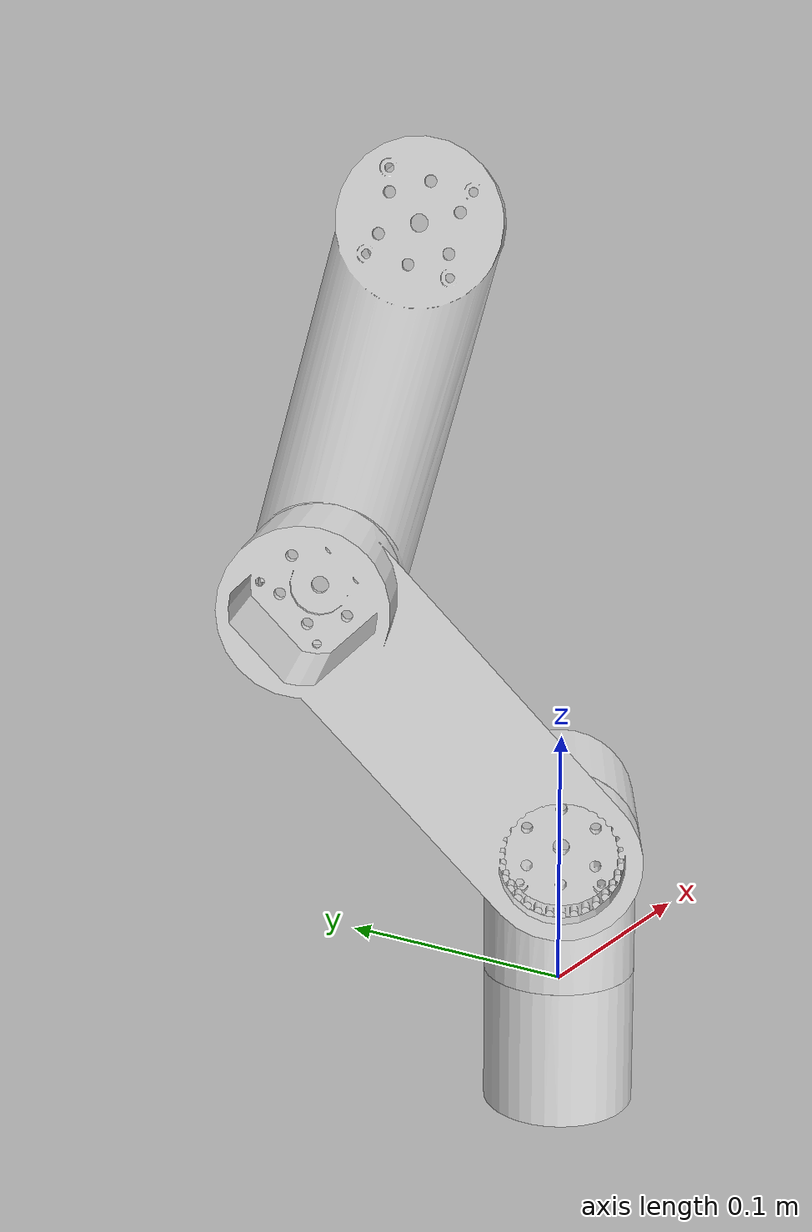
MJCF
<mujoco model="arm-v2">
  <compiler angle="radian"/>

  <asset>
    <mesh name="base_link" content_type="model/stl" file="meshes/base_link.STL"/>
    <mesh name="rotary-joint" content_type="model/stl" file="meshes/rotary-joint.STL"/>
    <mesh name="shoulder-joint" content_type="model/stl" file="meshes/shoulder-joint.STL"/>
    <mesh name="elbow-joint" content_type="model/stl" file="meshes/elbow-joint.STL"/>
  </asset>

  <worldbody>
    <geom type="mesh" rgba="0.89412 0.89412 0.89412 1" mesh="base_link"/>
    <body name="rotary-joint" pos="0 0 0.012" quat="-3.67321e-06 0 0 -1">
      <inertial pos="0.0014279 0.0008236 0.038018" quat="0.965313 -0.0099258 0.0370408 0.258263" mass="0.11473" diaginertia="0.000116683 0.000113035 7.96012e-05"/>
      <joint name="base-rotary"/>
      <geom type="mesh" rgba="0.89412 0.89412 0.89412 1" mesh="rotary-joint"/>
      <body name="shoulder-joint" pos="0.031972 0.018624 0.052745" quat="0.353674 0.353675 0.612304 0.612301">
        <inertial pos="-0.057192 0.064325 0.010049" quat="0.272436 0.680972 -0.305497 0.607229" mass="0.16216" diaginertia="0.000483143 0.000459928 7.04292e-05"/>
        <joint name="shoulder"/>
        <geom type="mesh" rgba="0.89412 0.89412 0.89412 1" mesh="shoulder-joint"/>
        <body name="elbow-joint" pos="-0.08992 0.10109 -0.014" quat="-3.67321e-06 -1 0 0">
          <inertial pos="0.023437 -0.082514 0.010049" quat="0.449914 0.531023 -0.401202 0.595508" mass="0.16216" diaginertia="0.000483143 0.000459926 7.04303e-05"/>
          <joint name="elbow"/>
          <geom type="mesh" rgba="0.89412 0.89412 0.89412 1" mesh="elbow-joint"/>
        </body>
      </body>
    </body>
  </worldbody>
</mujoco>
